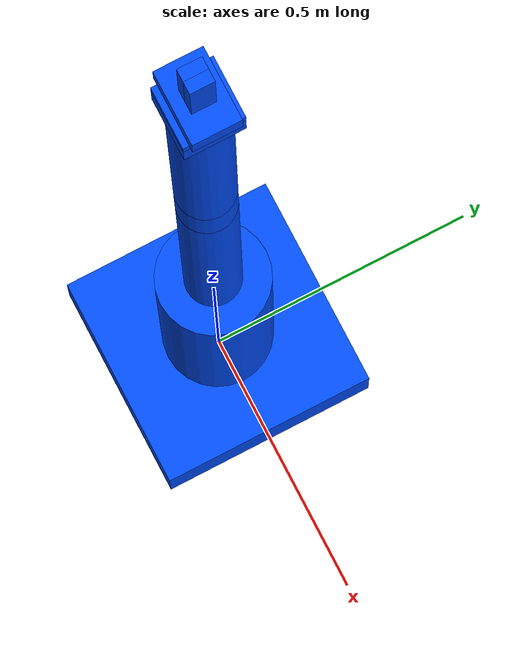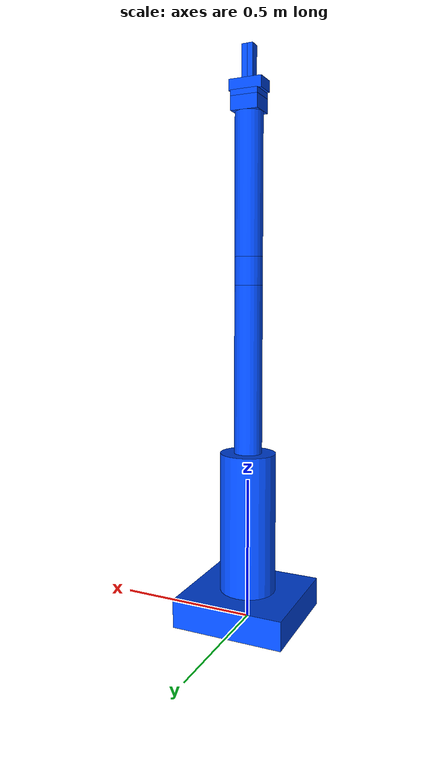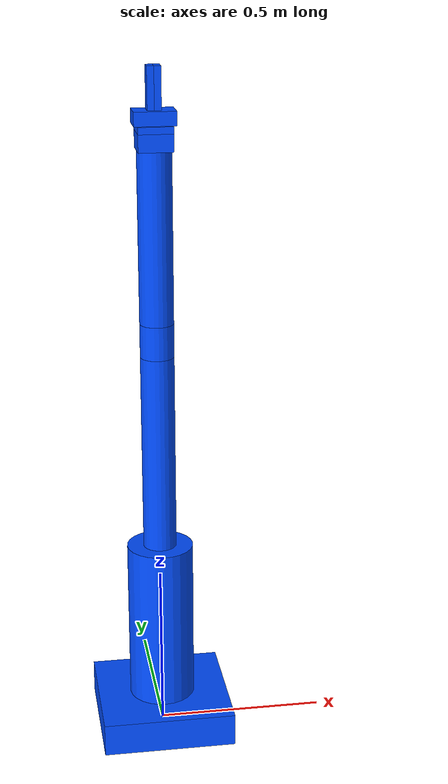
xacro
<?xml version="1.0"?>
<robot xmlns:xacro="http://www.ros.org/wiki/xacro" name="my_robot">
  <xacro:arg name="initial_positions_file" default="initial_positions.yaml"/>

  <xacro:include filename="$(find my_robot_description)/urdf/arm.xacro"/>
  <xacro:include filename="my_robot.ros2_control.xacro"/>

  <xacro:my_robot_ros2_control
    name="FakeSystem"
    initial_positions_file="$(arg initial_positions_file)"/>
</robot>

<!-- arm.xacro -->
<robot xmlns:xacro="http://www.ros.org/wiki/xacro" name="my_robot">
  <material name="blue">
    <color rgba="0.0 0.3 1.0 1.0"/>
  </material>

  <!-- 0.4 x 0.4 x 0.1 m fixed base. -->
  <link name="base_link">
    <visual>
      <origin xyz="0 0 0.05" rpy="0 0 0"/>
      <geometry>
        <box size="0.4 0.4 0.1"/>
      </geometry>
      <material name="blue"/>
    </visual>
    <collision>
      <origin xyz="0 0 0.05" rpy="0 0 0"/>
      <geometry>
        <box size="0.4 0.4 0.1"/>
      </geometry>
    </collision>
  </link>

  <link name="shoulder_link">
    <visual>
      <origin xyz="0 0 0.25" rpy="0 0 0"/>
      <geometry>
        <cylinder length="0.5" radius="0.1"/>
      </geometry>
      <material name="blue"/>
    </visual>
    <collision>
      <origin xyz="0 0 0.25" rpy="0 0 0"/>
      <geometry>
        <cylinder length="0.5" radius="0.1"/>
      </geometry>
    </collision>
  </link>

  <joint name="joint1" type="revolute">
    <parent link="base_link"/>
    <child link="shoulder_link"/>
    <origin xyz="0 0 0.1" rpy="0 0 0"/>
    <axis xyz="0 0 1"/>
    <limit lower="-3.14" upper="3.14" effort="10" velocity="1"/>
  </joint>

  <link name="arm_link">
    <visual>
      <origin xyz="0 0 0.3" rpy="0 0 0"/>
      <geometry>
        <cylinder length="0.6" radius="0.05"/>
      </geometry>
      <material name="blue"/>
    </visual>
    <collision>
      <origin xyz="0 0 0.3" rpy="0 0 0"/>
      <geometry>
        <cylinder length="0.6" radius="0.05"/>
      </geometry>
    </collision>
  </link>

  <joint name="joint2" type="revolute">
    <parent link="shoulder_link"/>
    <child link="arm_link"/>
    <origin xyz="0 0 0.5" rpy="0 0 0"/>
    <axis xyz="0 1 0"/>
    <limit lower="-1.57" upper="1.57" effort="10" velocity="1"/>
  </joint>

  <link name="elbow_link">
    <visual>
      <origin xyz="0 0 0.05" rpy="0 0 0"/>
      <geometry>
        <cylinder length="0.1" radius="0.05"/>
      </geometry>
      <material name="blue"/>
    </visual>
    <collision>
      <origin xyz="0 0 0.05" rpy="0 0 0"/>
      <geometry>
        <cylinder length="0.1" radius="0.05"/>
      </geometry>
    </collision>
  </link>

  <joint name="joint3" type="revolute">
    <parent link="arm_link"/>
    <child link="elbow_link"/>
    <origin xyz="0 0 0.6" rpy="0 0 0"/>
    <axis xyz="0 1 0"/>
    <limit lower="-1.57" upper="1.57" effort="10" velocity="1"/>
  </joint>

  <link name="forearm_link">
    <visual>
      <origin xyz="0 0 0.25" rpy="0 0 0"/>
      <geometry>
        <cylinder length="0.5" radius="0.05"/>
      </geometry>
      <material name="blue"/>
    </visual>
    <collision>
      <origin xyz="0 0 0.25" rpy="0 0 0"/>
      <geometry>
        <cylinder length="0.5" radius="0.05"/>
      </geometry>
    </collision>
  </link>

  <joint name="joint4" type="revolute">
    <parent link="elbow_link"/>
    <child link="forearm_link"/>
    <origin xyz="0 0 0.1" rpy="0 0 0"/>
    <axis xyz="0 0 1"/>
    <limit lower="-3.14" upper="3.14" effort="10" velocity="1"/>
  </joint>

  <link name="wrist_link">
    <visual>
      <origin xyz="0 0 0.025" rpy="0 0 0"/>
      <geometry>
        <box size="0.1 0.1 0.05"/>
      </geometry>
      <material name="blue"/>
    </visual>
    <collision>
      <origin xyz="0 0 0.025" rpy="0 0 0"/>
      <geometry>
        <box size="0.1 0.1 0.05"/>
      </geometry>
    </collision>
  </link>

  <joint name="joint5" type="revolute">
    <parent link="forearm_link"/>
    <child link="wrist_link"/>
    <origin xyz="0 0 0.5" rpy="0 0 0"/>
    <axis xyz="0 1 0"/>
    <limit lower="-1.57" upper="1.57" effort="10" velocity="1"/>
  </joint>

  <link name="hand_link">
    <visual>
      <origin xyz="0 0 0.01" rpy="0 0 0"/>
      <geometry>
        <box size="0.1 0.1 0.02"/>
      </geometry>
      <material name="blue"/>
    </visual>
    <collision>
      <origin xyz="0 0 0.01" rpy="0 0 0"/>
      <geometry>
        <box size="0.1 0.1 0.02"/>
      </geometry>
    </collision>
  </link>

  <joint name="joint6" type="revolute">
    <parent link="wrist_link"/>
    <child link="hand_link"/>
    <origin xyz="0 0 0.05" rpy="0 0 0"/>
    <axis xyz="0 0 1"/>
    <limit lower="-3.14" upper="3.14" effort="10" velocity="1"/>
  </joint>

  <link name="gripper_base">
    <visual>
      <origin xyz="0 0 0.02" rpy="0 0 0"/>
      <geometry><box size="0.12 0.08 0.04"/></geometry>
      <material name="blue"/>
    </visual>
    <collision>
      <origin xyz="0 0 0.02" rpy="0 0 0"/>
      <geometry><box size="0.12 0.08 0.04"/></geometry>
    </collision>
  </link>

  <joint name="gripper_base_joint" type="fixed">
    <parent link="hand_link"/>
    <child link="gripper_base"/>
    <origin xyz="0 0 0.02" rpy="0 0 0"/>
  </joint>

  <link name="gripper_finger_left">
    <visual>
      <origin xyz="0 0 0.06" rpy="0 0 0"/>
      <geometry><box size="0.02 0.04 0.12"/></geometry>
      <material name="blue"/>
    </visual>
    <collision>
      <origin xyz="0 0 0.06" rpy="0 0 0"/>
      <geometry><box size="0.02 0.04 0.12"/></geometry>
    </collision>
  </link>

  <joint name="gripper_finger_left_joint" type="prismatic">
    <parent link="gripper_base"/>
    <child link="gripper_finger_left"/>
    <origin xyz="0.01 0 0.04" rpy="0 0 0"/>
    <axis xyz="1 0 0"/>
    <limit lower="0" upper="0.034" effort="20" velocity="0.02"/>
  </joint>

  <link name="gripper_finger_right">
    <visual>
      <origin xyz="0 0 0.06" rpy="0 0 0"/>
      <geometry><box size="0.02 0.04 0.12"/></geometry>
      <material name="blue"/>
    </visual>
    <collision>
      <origin xyz="0 0 0.06" rpy="0 0 0"/>
      <geometry><box size="0.02 0.04 0.12"/></geometry>
    </collision>
  </link>

  <joint name="gripper_finger_right_joint" type="prismatic">
    <parent link="gripper_base"/>
    <child link="gripper_finger_right"/>
    <origin xyz="-0.01 0 0.04" rpy="0 0 0"/>
    <axis xyz="1 0 0"/>
    <mimic joint="gripper_finger_left_joint" multiplier="-1.0"/>
    <limit lower="-0.034" upper="0" effort="20" velocity="0.1"/>
  </joint>

  <link name="tool_link">
    <visual>
      <origin xyz="0 0 0" rpy="0 0 0"/>
      <geometry>
        <sphere radius="0.015"/>
      </geometry>
      <material name="tool_trail_marker">
        <color rgba="1.0 0.85 0.0 1.0"/>
      </material>
    </visual>
  </link>

  <joint name="tool_joint" type="fixed">
    <parent link="gripper_base"/>
    <child link="tool_link"/>
    <origin xyz="0 0 0.10" rpy="0 0 0"/>
  </joint>
</robot>
